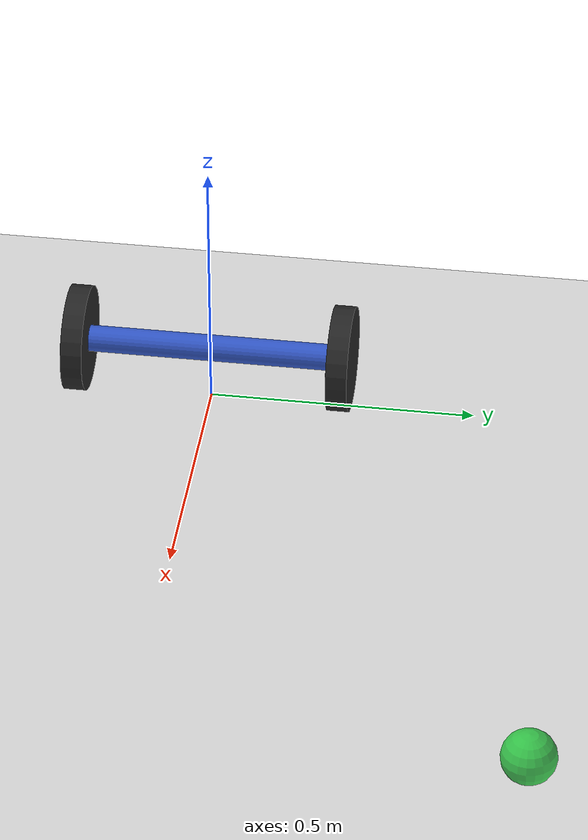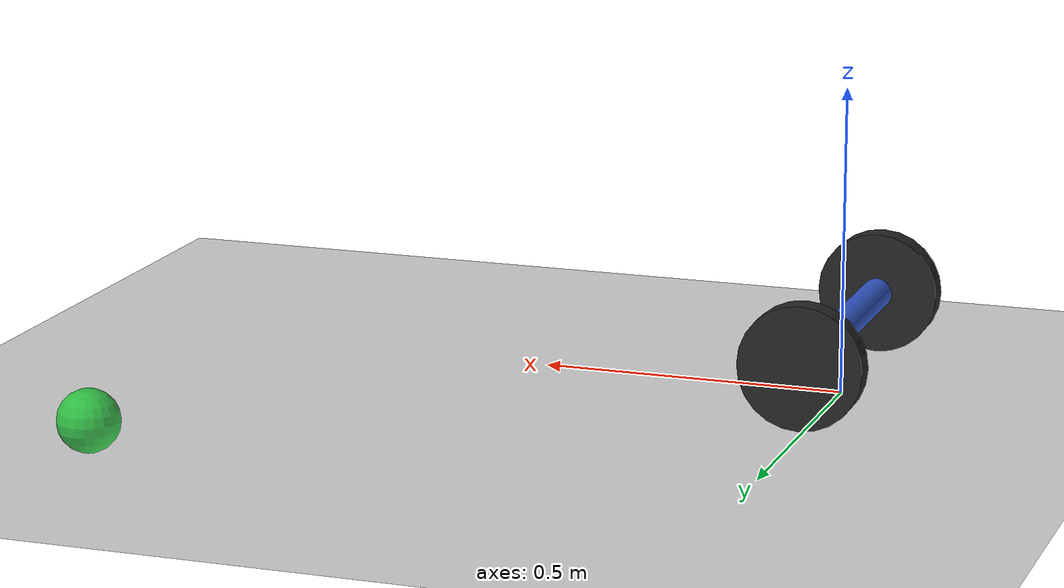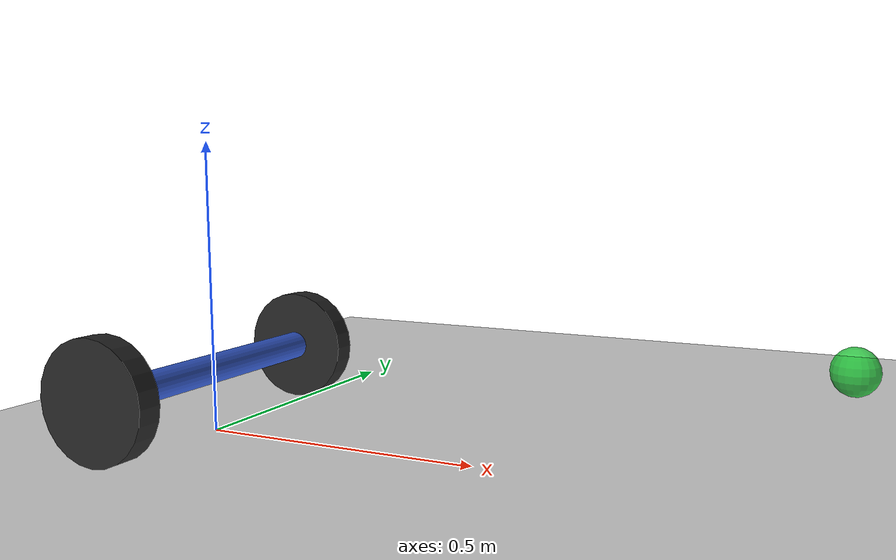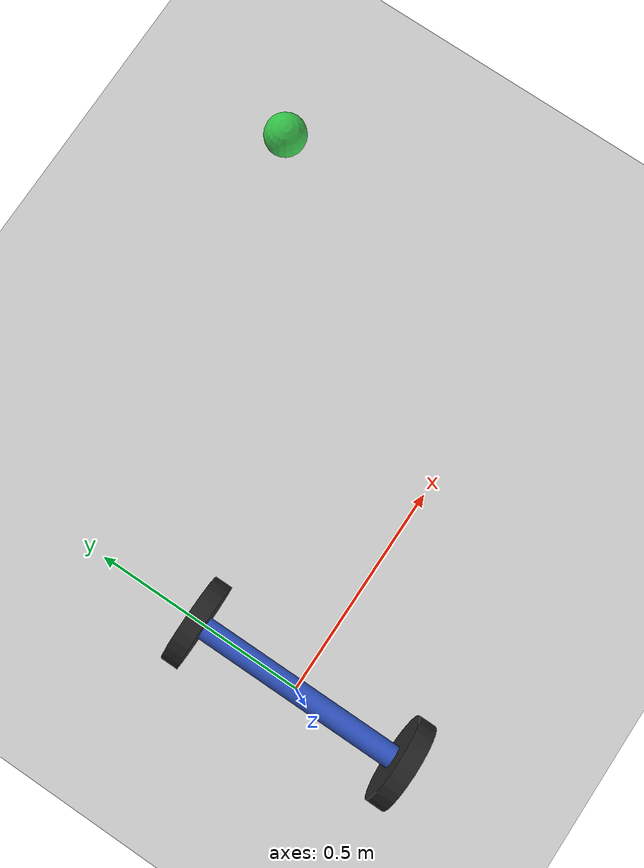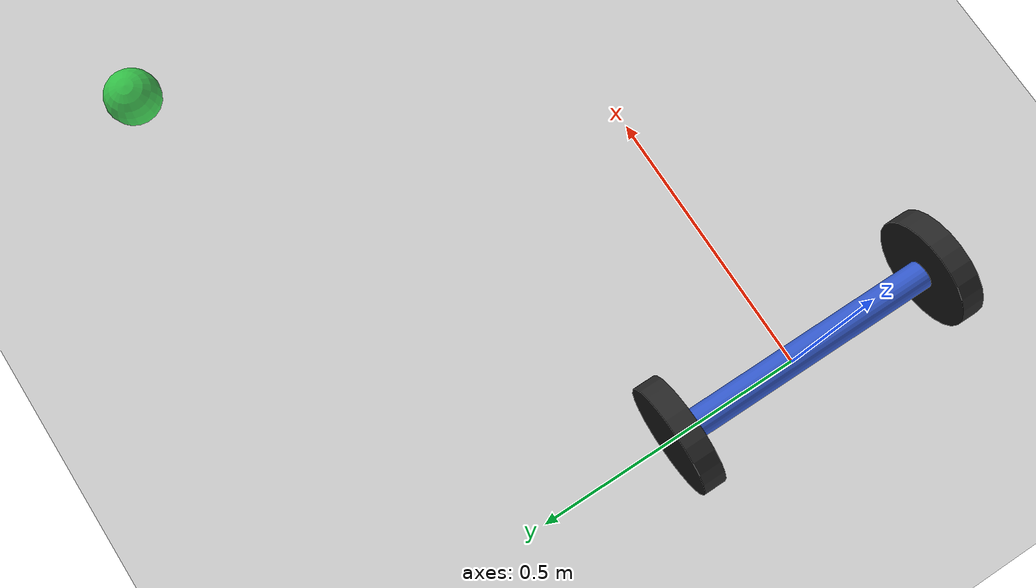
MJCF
<mujoco model="two_wheel_robot">
    <compiler angle="degree"/>

    <option timestep="0.002"
            gravity="0 0 -9.81"/>

    <worldbody>
        <light pos="0 0 2"
               dir="0 0 -1"/>

        <!-- Ground -->
        <geom name="floor"
              type="plane"
              pos="0 0 0"
              size="2 2 0.1"
              friction="2.0 0.01 0.001"
              condim="3"
              rgba="0.85 0.85 0.85 1"/>

        <!-- Main robot body -->
       <body name="robot_xy" pos="0 0 0.11">

       <joint name="robot_x"
              type="slide"
              axis="1 0 0"/>

       <joint name="robot_y"
              type="slide"
              axis="0 1 0"/>

       <!-- tiny physical representation for the intermediate body -->
       <geom name="robot_xy_dummy"
              type="sphere"
              size="0.001"
              mass="0.001"
              contype="0"
              conaffinity="0"
              rgba="0 0 0 0"/>

       <body name="robot">

              <joint name="robot_z"
                     type="slide"
                     axis="0 0 1"
                     damping="0.1"/>

              <joint name="robot_yaw"
                     type="hinge"
                     axis="0 0 1"/>

            <!-- Central cylindrical bar -->
            <geom name="chassis_geom"
                  type="cylinder"
                  fromto="0 -0.25 0  0 0.25 0"
                  size="0.025"
                  mass="1.0"
                  rgba="0.20 0.35 0.80 1"/>

            <!-- LEFT STEERING ASSEMBLY -->
            <body name="steer_left_body"
                  pos="0 0.25 0">

                <joint name="steer_left_joint"
                       type="hinge"
                       pos="0 0 0"
                       axis="0 0 1"
                       range="-35 35"
                       limited="true"
                       damping="0.5"/>

                <geom name="steer_left_hub"
                      type="cylinder"
                      size="0.025 0.015"
                      mass="0.05"
                      contype="0"
                      conaffinity="0"
                      rgba="0 0 0 0"/>

                <body name="wheel_left_body"
                      pos="0 0 0">

                    <joint name="wheel_left_joint"
                           type="hinge"
                           pos="0 0 0"
                           axis="0 1 0"
                           damping="0.02"/>

                    <geom name="wheel_left_geom"
                          type="cylinder"
                          size="0.10 0.02"
                          euler="90 0 0"
                          mass="0.35"
                          friction="2.0 0.01 0.001"
                          condim="3"
                          rgba="0.15 0.15 0.15 1"/>

                </body>
            </body>

              <!-- RIGHT STEERING ASSEMBLY -->
                     <body name="steer_right_body"
                            pos="0 -0.25 0">

                            <joint name="steer_right_joint"
                                   type="hinge"
                                   pos="0 0 0"
                                   axis="0 0 1"
                                   range="-35 35"
                                   limited="true"
                                   damping="0.5"/>

                            <geom name="steer_right_hub"
                                   type="cylinder"
                                   size="0.025 0.015"
                                   mass="0.05"
                                   contype="0"
                                   conaffinity="0"
                                   rgba="0 0 0 0"/>

                            <body name="wheel_right_body"
                                   pos="0 0 0">

                            <joint name="wheel_right_joint"
                                   type="hinge"
                                   pos="0 0 0"
                                   axis="0 1 0"
                                   damping="0.02"/>

                            <geom name="wheel_right_geom"
                                   type="cylinder"
                                   size="0.10 0.02"
                                   euler="90 0 0"
                                   mass="0.35"
                                   friction="2.0 0.01 0.001"
                                   condim="3"
                                   rgba="0.15 0.15 0.15 1"/>

                            </body>
                     </body>

              </body>
       </body>

       <body name="target"
              mocap="true"
              pos="1.0 0.7 0.05">

              <geom name="target_geom"
                     type="sphere"
                     size="0.05"
                     density="0"
                     contype="0"
                     conaffinity="0"
                     rgba="0.1 0.8 0.2 0.8"/>

       </body>

    </worldbody>

    <actuator>

        <!-- Wheel drive -->
        <motor name="drive_left"
               joint="wheel_left_joint"
               gear="1"
               ctrllimited="true"
               ctrlrange="-1 1"/>

        <motor name="drive_right"
               joint="wheel_right_joint"
               gear="1"
               ctrllimited="true"
               ctrlrange="-1 1"/>

        <!-- Steering -->
        <position name="steer_left"
                  joint="steer_left_joint"
                  kp="50"
                  ctrllimited="true"
                  ctrlrange="-0.6109 0.6109"/>

        <position name="steer_right"
                  joint="steer_right_joint"
                  kp="50"
                  ctrllimited="true"
                  ctrlrange="-0.6109 0.6109"/>

    </actuator>

</mujoco>
